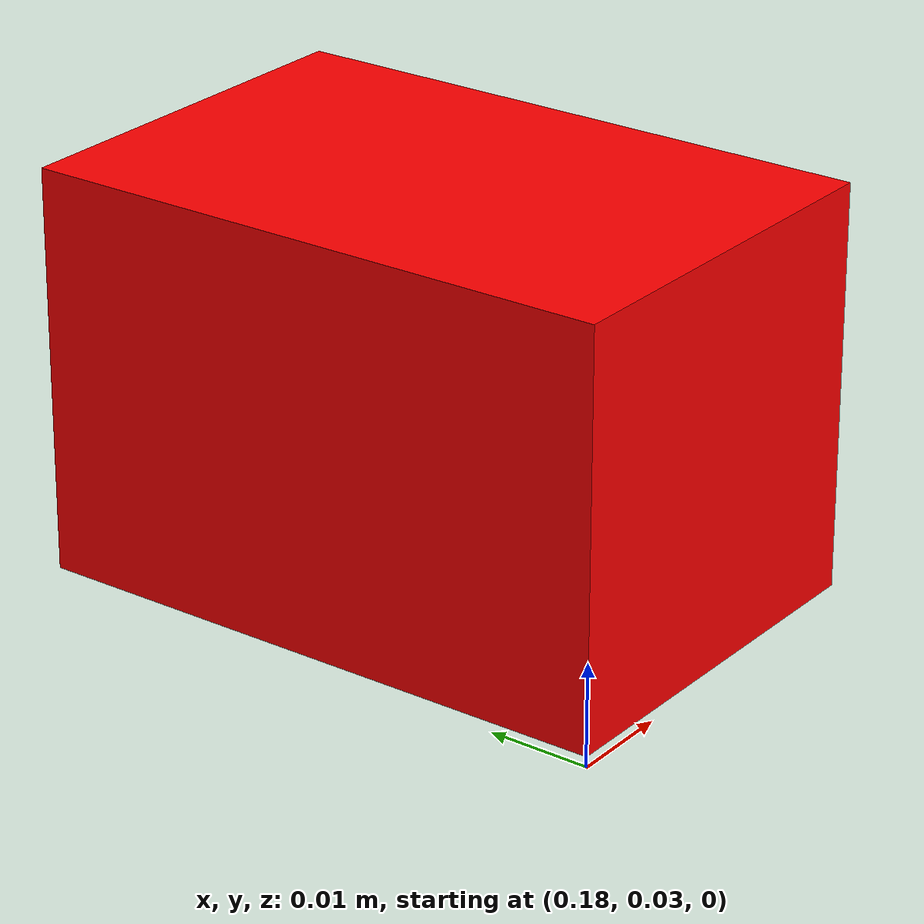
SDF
<?xml version="1.0"?>
<sdf version="1.10">
  <model name="red_block">
    <!-- spawn 위치(월드 기준). 팔 앞쪽(x=0.20) + 살짝 옆(y=0.06)으로 두어
         현재 쫙 펴진 팔에 가리지 않고 화면에 보이게. 바닥(z=0) 위에 얹히도록 살짝 띄워 놓음.
         값은 잠정 — 화면 보고 조정한다(피킹 도달 범위 안: 이전 pick/place가 x≈0.2, y≈0~0.1에서 성공). -->
    <pose>0.20 0.06 0.021 0 0 0</pose>

    <link name="link">
      <!-- 관성 : 박스(질량 0.05kg) 근사. 동적 물체라 바닥에 얹혀 있다가 나중에 집혀 들린다. -->
      <inertial>
        <mass>0.05</mass>
        <inertia>
          <ixx>0.0000217</ixx>
          <ixy>0.0</ixy>
          <ixz>0.0</ixz>
          <iyy>0.0000133</iyy>
          <iyz>0.0</iyz>
          <izz>0.0000217</izz>
        </inertia>
      </inertial>

      <!-- 충돌 형상 : 바닥·그리퍼와 부딪히는 실제 몸체 -->
      <collision name="collision">
        <geometry>
          <box>
            <size>0.04 0.06 0.04</size>
          </box>
        </geometry>
        <surface>
          <friction>
            <ode>
              <mu>1.0</mu>
              <mu2>1.0</mu2>
            </ode>
          </friction>
        </surface>
      </collision>

      <!-- 시각 형상 : 카메라가 보는 빨간 겉모습. HSV 검출이 이 빨강을 찾는다. -->
      <visual name="visual">
        <geometry>
          <box>
            <size>0.04 0.06 0.04</size>
          </box>
        </geometry>
        <material>
          <ambient>1.0 0.0 0.0 1</ambient>
          <diffuse>1.0 0.0 0.0 1</diffuse>
          <specular>0.1 0.1 0.1 1</specular>
        </material>
      </visual>
    </link>
  </model>
</sdf>
